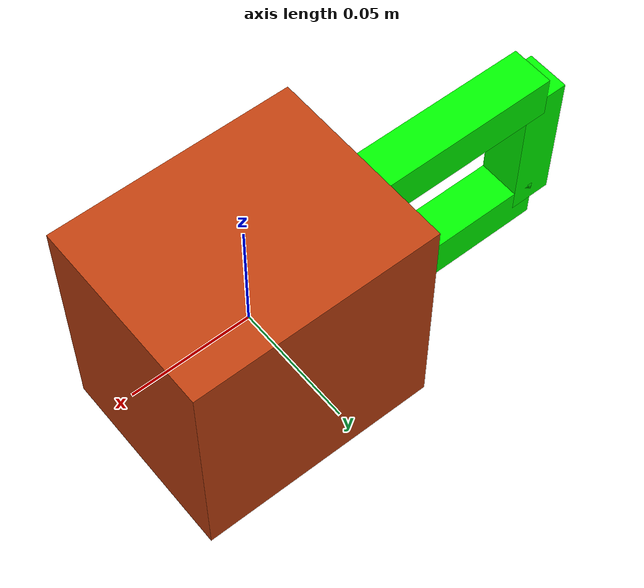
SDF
<?xml version="1.0"?>
<sdf version="1.6">
  <model name="target_box">
    <static>false</static>
    <link name="body">
      <inertial>
        <mass>0.20</mass>
        <inertia>
          <ixx>0.0001093</ixx><iyy>0.0001333</iyy><izz>0.0001093</izz>
        </inertia>
      </inertial>
      <collision name="body_collision">
        <surface>
          <friction><ode><mu>1.2</mu><mu2>1.2</mu2></ode></friction>
          <contact><ode><kp>300000</kp><kd>30</kd><max_vel>0.005</max_vel><min_depth>0.001</min_depth></ode></contact>
        </surface>
        <geometry><box><size>0.10 0.08 0.10</size></box></geometry>
      </collision>
      <visual name="body_visual">
        <geometry><box><size>0.10 0.08 0.10</size></box></geometry>
        <material><ambient>0.55 0.18 0.05 1</ambient><diffuse>0.75 0.25 0.06 1</diffuse></material>
      </visual>
    </link>
    <link name="handle">
      <pose>-0.130 0 0 0 0 0</pose>
      <inertial>
        <mass>0.01</mass>
        <inertia><ixx>0.000004</ixx><iyy>0.000004</iyy><izz>0.000001</izz></inertia>
      </inertial>
      <collision name="grip_collision">
        <surface>
          <friction><ode><mu>15.0</mu><mu2>15.0</mu2><slip1>0.0</slip1><slip2>0.0</slip2></ode></friction>
          <contact><ode><kp>300000</kp><kd>30</kd><max_vel>0.005</max_vel><min_depth>0.001</min_depth></ode></contact>
        </surface>
        <geometry><box><size>0.018 0.018 0.060</size></box></geometry>
      </collision>
      <collision name="upper_mount_collision">
        <pose>0.040 0 0.030 0 0 0</pose>
        <geometry><box><size>0.080 0.018 0.018</size></box></geometry>
      </collision>
      <collision name="lower_mount_collision">
        <pose>0.040 0 -0.030 0 0 0</pose>
        <geometry><box><size>0.080 0.018 0.018</size></box></geometry>
      </collision>
      <visual name="grip_visual">
        <geometry><box><size>0.018 0.018 0.060</size></box></geometry>
        <material><ambient>0 1 0 1</ambient><diffuse>0 1 0 1</diffuse></material>
      </visual>
      <visual name="upper_mount_visual">
        <pose>0.040 0 0.030 0 0 0</pose>
        <geometry><box><size>0.080 0.018 0.018</size></box></geometry>
        <material><ambient>0 1 0 1</ambient><diffuse>0 1 0 1</diffuse></material>
      </visual>
      <visual name="lower_mount_visual">
        <pose>0.040 0 -0.030 0 0 0</pose>
        <geometry><box><size>0.080 0.018 0.018</size></box></geometry>
        <material><ambient>0 1 0 1</ambient><diffuse>0 1 0 1</diffuse></material>
      </visual>
    </link>
    <joint name="body_to_handle" type="fixed">
      <parent>body</parent>
      <child>handle</child>
    </joint>
  </model>
</sdf>
